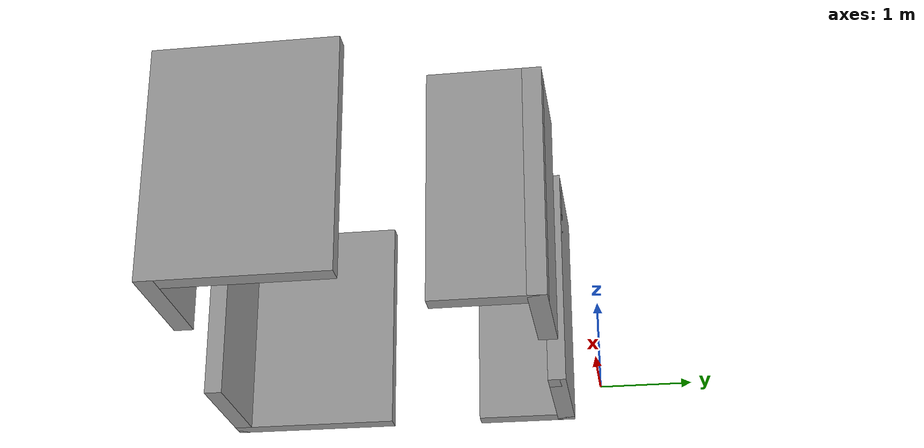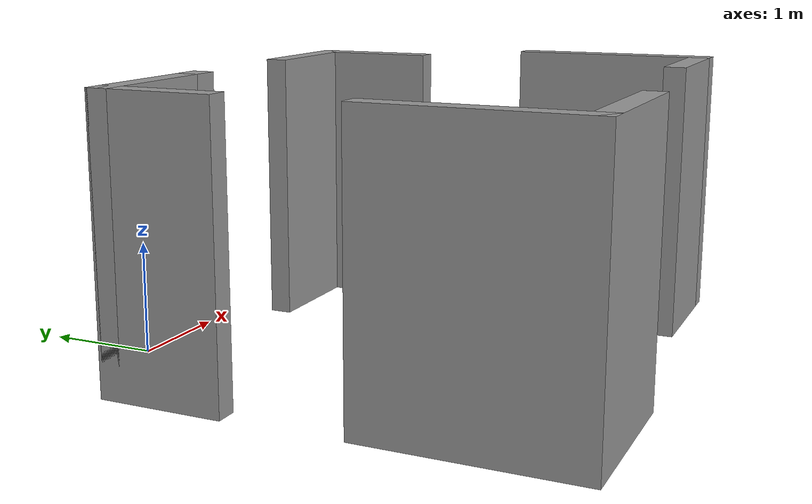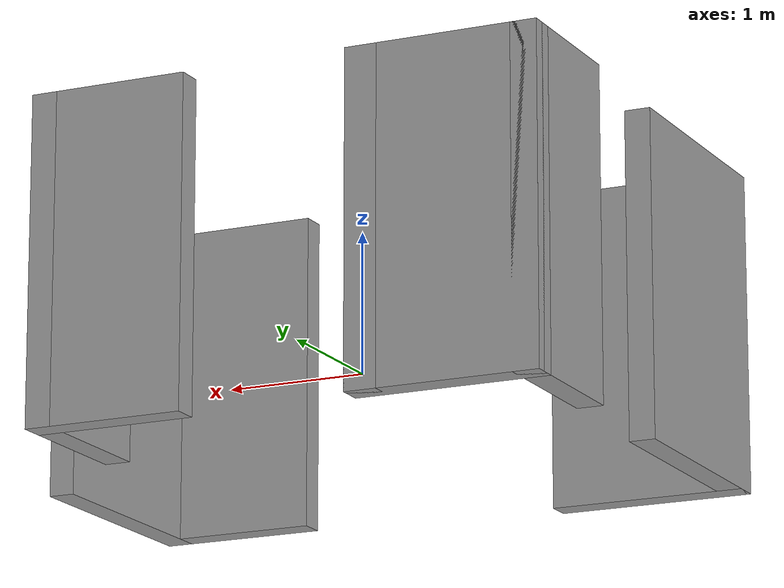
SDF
<?xml version='1.0'?>
<sdf version='1.4'>
  <model name='BuildingDefaultName'>
    <link name='Wall_19'>
      <collision name='Wall_19_Collision'>
        <geometry>
          <box>
            <size>1.11493 0.2 2.5</size>
          </box>
        </geometry>
        <pose>0 0 1.25 0 -0 0</pose>
      </collision>
      <visual name='Wall_19_Visual'>
        <pose>0 0 1.25 0 -0 0</pose>
        <geometry>
          <box>
            <size>1.11493 0.2 2.5</size>
          </box>
        </geometry>
        <material>
          <script>
            <uri>file://media/materials/scripts/gazebo.material</uri>
            <name>Gazebo/Grey</name>
          </script>
        </material>
      </visual>
      <velocity_decay>
        <linear>0</linear>
        <angular>0</angular>
      </velocity_decay>
      <pose>-1.045 -0.924188 0 0 -0 1.5708</pose>
    </link>
    <link name='Wall_20'>
      <collision name='Wall_20_Collision'>
        <geometry>
          <box>
            <size>1.47032 0.2 2.5</size>
          </box>
        </geometry>
        <pose>0 0 1.25 0 -0 0</pose>
      </collision>
      <visual name='Wall_20_Visual'>
        <pose>0 0 1.25 0 -0 0</pose>
        <geometry>
          <box>
            <size>1.47032 0.2 2.5</size>
          </box>
        </geometry>
        <material>
          <script>
            <uri>file://media/materials/scripts/gazebo.material</uri>
            <name>Gazebo/Grey</name>
          </script>
        </material>
      </visual>
      <velocity_decay>
        <linear>0</linear>
        <angular>0</angular>
      </velocity_decay>
      <pose>-0.409842 -0.466721 0 0 -0 0</pose>
    </link>
    <link name='Wall_21'>
      <collision name='Wall_21_Collision'>
        <geometry>
          <box>
            <size>0.245369 0.2 2.5</size>
          </box>
        </geometry>
        <pose>0 0 1.25 0 -0 0</pose>
      </collision>
      <visual name='Wall_21_Visual'>
        <pose>0 0 1.25 0 -0 0</pose>
        <geometry>
          <box>
            <size>0.245369 0.2 2.5</size>
          </box>
        </geometry>
        <material>
          <script>
            <uri>file://media/materials/scripts/gazebo.material</uri>
            <name>Gazebo/Grey</name>
          </script>
        </material>
      </visual>
      <velocity_decay>
        <linear>0</linear>
        <angular>0</angular>
      </velocity_decay>
      <pose>0.202634 -0.466721 0 0 -0 3.14159</pose>
    </link>
    <link name='Wall_23'>
      <collision name='Wall_23_Collision'>
        <geometry>
          <box>
            <size>1.23592 0.2 2.5</size>
          </box>
        </geometry>
        <pose>0 0 1.25 0 -0 0</pose>
      </collision>
      <visual name='Wall_23_Visual'>
        <pose>0 0 1.25 0 -0 0</pose>
        <geometry>
          <box>
            <size>1.23592 0.2 2.5</size>
          </box>
        </geometry>
        <material>
          <script>
            <uri>file://media/materials/scripts/gazebo.material</uri>
            <name>Gazebo/Grey</name>
          </script>
        </material>
      </visual>
      <velocity_decay>
        <linear>0</linear>
        <angular>0</angular>
      </velocity_decay>
      <pose>2.21776 -0.451598 0 0 -0 0</pose>
    </link>
    <link name='Wall_24'>
      <collision name='Wall_24_Collision'>
        <geometry>
          <box>
            <size>1.18299 0.2 2.5</size>
          </box>
        </geometry>
        <pose>0 0 1.25 0 -0 0</pose>
      </collision>
      <visual name='Wall_24_Visual'>
        <pose>0 0 1.25 0 -0 0</pose>
        <geometry>
          <box>
            <size>1.18299 0.2 2.5</size>
          </box>
        </geometry>
        <material>
          <script>
            <uri>file://media/materials/scripts/gazebo.material</uri>
            <name>Gazebo/Grey</name>
          </script>
        </material>
      </visual>
      <velocity_decay>
        <linear>0</linear>
        <angular>0</angular>
      </velocity_decay>
      <pose>2.73571 -0.943091 0 0 0 -1.5708</pose>
    </link>
    <link name='Wall_26'>
      <collision name='Wall_26_Collision'>
        <geometry>
          <box>
            <size>1.91859 0.2 2.5</size>
          </box>
        </geometry>
        <pose>0 0 1.25 0 -0 0</pose>
      </collision>
      <visual name='Wall_26_Visual'>
        <pose>0 0 1.25 0 -0 0</pose>
        <geometry>
          <box>
            <size>1.91859 0.2 2.5</size>
          </box>
        </geometry>
        <material>
          <script>
            <uri>file://media/materials/scripts/gazebo.material</uri>
            <name>Gazebo/Grey</name>
          </script>
        </material>
      </visual>
      <velocity_decay>
        <linear>0</linear>
        <angular>0</angular>
      </velocity_decay>
      <pose>-1.00611 -3.48808 0 0 0 -1.5708</pose>
    </link>
    <link name='Wall_27'>
      <collision name='Wall_27_Collision'>
        <geometry>
          <box>
            <size>1.53837 0.2 2.5</size>
          </box>
        </geometry>
        <pose>0 0 1.25 0 -0 0</pose>
      </collision>
      <visual name='Wall_27_Visual'>
        <pose>0 0 1.25 0 -0 0</pose>
        <geometry>
          <box>
            <size>1.53837 0.2 2.5</size>
          </box>
        </geometry>
        <material>
          <script>
            <uri>file://media/materials/scripts/gazebo.material</uri>
            <name>Gazebo/Grey</name>
          </script>
        </material>
      </visual>
      <velocity_decay>
        <linear>0</linear>
        <angular>0</angular>
      </velocity_decay>
      <pose>-0.336922 -4.34738 0 0 -0 0</pose>
    </link>
    <link name='Wall_29'>
      <collision name='Wall_29_Collision'>
        <geometry>
          <box>
            <size>1.31024 0.2 2.5</size>
          </box>
        </geometry>
        <pose>0 0 1.25 0 -0 0</pose>
      </collision>
      <visual name='Wall_29_Visual'>
        <pose>0 0 1.25 0 -0 0</pose>
        <geometry>
          <box>
            <size>1.31024 0.2 2.5</size>
          </box>
        </geometry>
        <material>
          <script>
            <uri>file://media/materials/scripts/gazebo.material</uri>
            <name>Gazebo/Grey</name>
          </script>
        </material>
      </visual>
      <velocity_decay>
        <linear>0</linear>
        <angular>0</angular>
      </velocity_decay>
      <pose>3.06223 -4.07362 0 0 -0 0</pose>
    </link>
    <link name='Wall_30'>
      <collision name='Wall_30_Collision'>
        <geometry>
          <box>
            <size>1.91859 0.2 2.5</size>
          </box>
        </geometry>
        <pose>0 0 1.25 0 -0 0</pose>
      </collision>
      <visual name='Wall_30_Visual'>
        <pose>0 0 1.25 0 -0 0</pose>
        <geometry>
          <box>
            <size>1.91859 0.2 2.5</size>
          </box>
        </geometry>
        <material>
          <script>
            <uri>file://media/materials/scripts/gazebo.material</uri>
            <name>Gazebo/Grey</name>
          </script>
        </material>
      </visual>
      <velocity_decay>
        <linear>0</linear>
        <angular>0</angular>
      </velocity_decay>
      <pose>3.61735 -3.21433 0 0 -0 1.5708</pose>
    </link>
    <static>1</static>
  </model>
</sdf>
